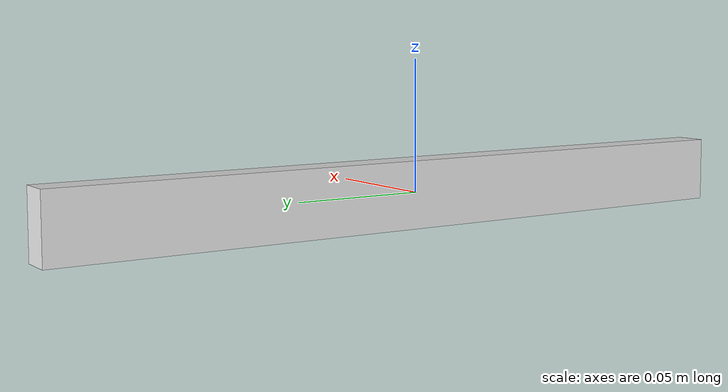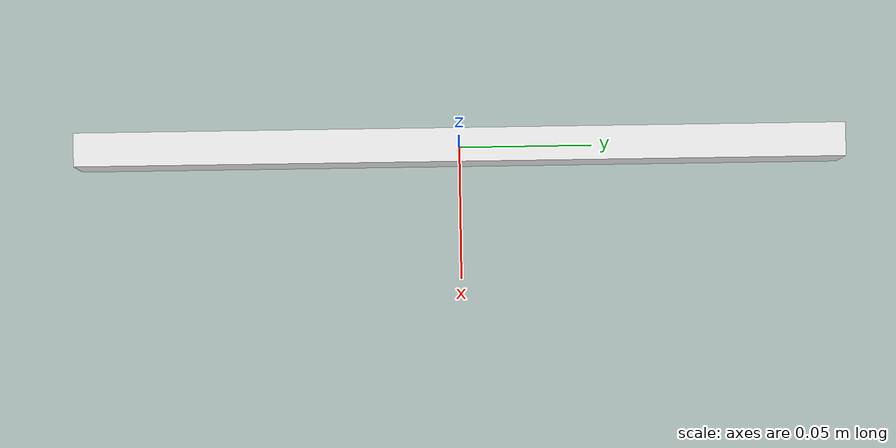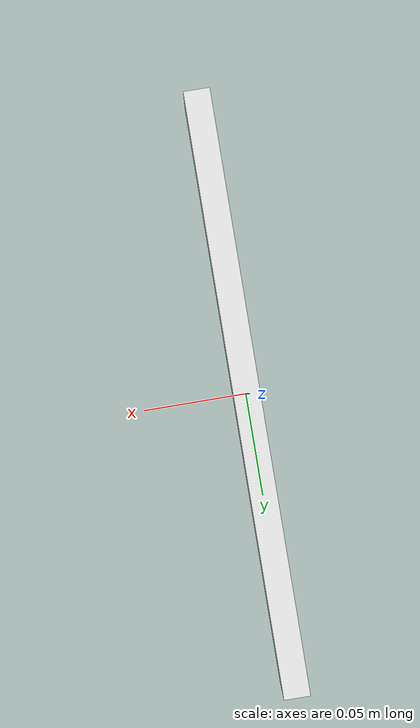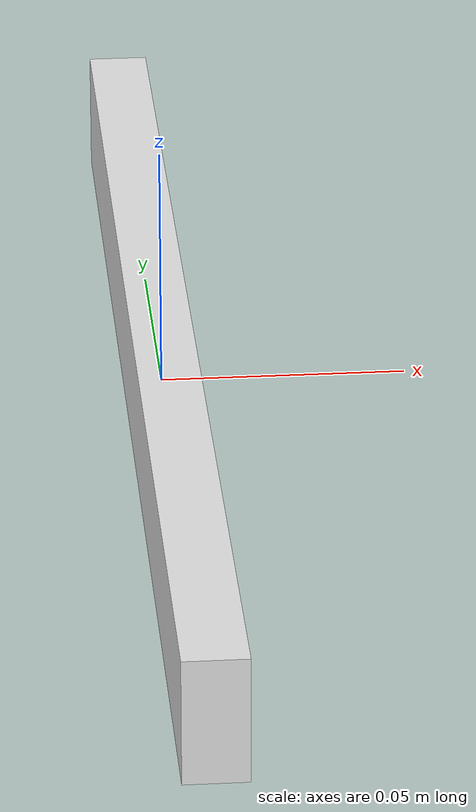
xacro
<?xml version="1.0"?>
<robot name="cylinder" xmlns:xacro="http://ros.org/wiki/xacro">
    <link name="base_link">
        <visual>
        <origin xyz="0 0 0" rpy="0 0 0"/>
        <geometry>
            <box size="0.0127 0.29 0.0254"/>
        </geometry>
            <material name="silver">
                <color rgba="0.9 0.9 0.9 1.0"/>
            </material>
        </visual>

        <!--Inertia estimated for solid cylinder of radius 9" and height 3" with mass 7kg-->
        <inertial>
            <origin xyz="0 0 0" rpy="0 0 0"/>
            <mass value="10"/>
            <inertia
                ixx="0.094839" ixy="0.0" ixz="0.0"
                iyy="0.094839" iyz="0.0"
                izz="0.182903"/>
        </inertial>

        <gazebo>
            <maxVel>3.0</maxVel>
        </gazebo>
    </link>
</robot>
